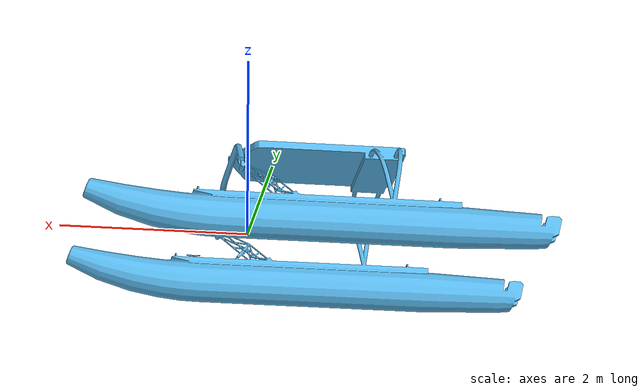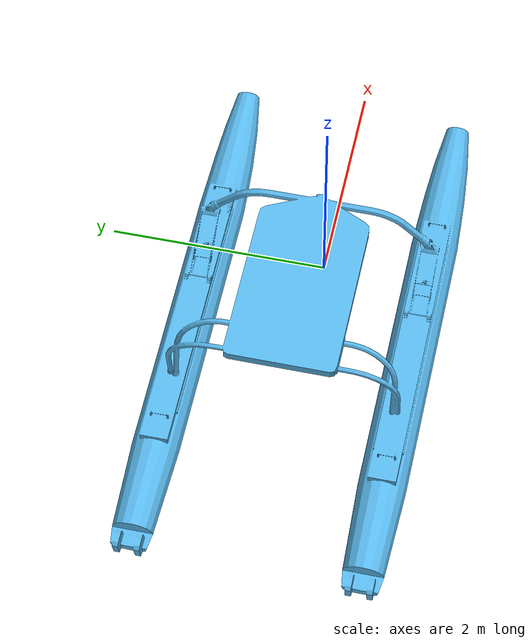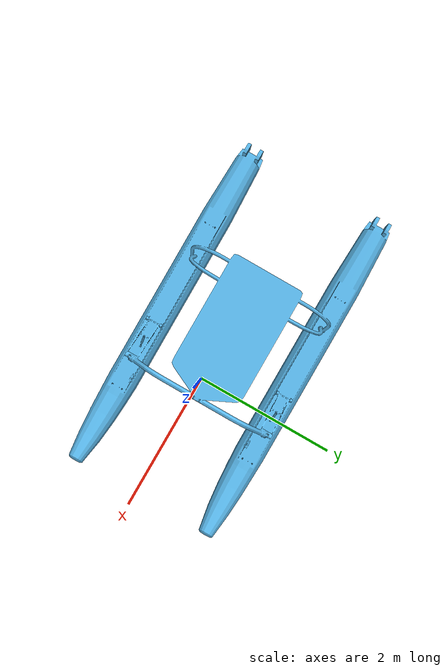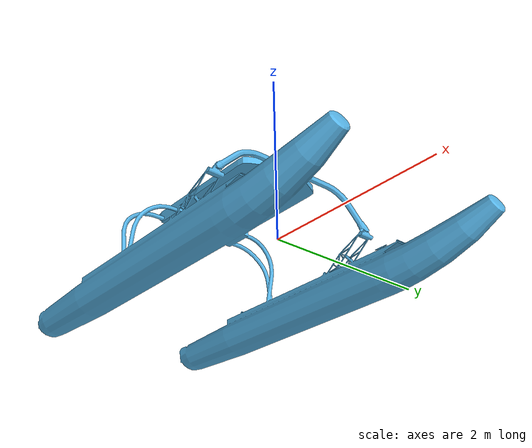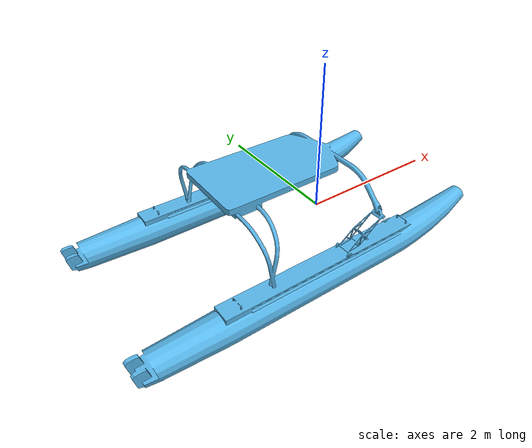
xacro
<?xml version="1.0"?>
<robot xmlns:xacro="http://ros.org/wiki/xacro" name="wam-v">
 <xacro:arg name="namespace" default="wamv"/>
  <xacro:property name="namespace" value="$(arg namespace)" scope="global" />
  <!-- Macro for creating the main collisions as simple shapes. -->
  <xacro:macro name="main_collisions" params="prefix reflect:=1">

  </xacro:macro>

  <link name="${namespace}/base_link">
  </link>

  <joint name="${namespace}/dummy_joint" type = "fixed">
    <parent link="${namespace}/base_link"/>
    <child link="${namespace}/dummy_link"/>
  </joint>

  <!-- Basic model of the 16' WAM-V USV -->
  <link name="${namespace}/dummy_link">
    <visual>
      <origin xyz="-0.7 0.085 -0.45" rpy="0 0 0" />
      <geometry>
        <mesh filename="package://wamv_description/models/WAM-V-Base/mesh/WAM-V-Base.dae"/>
      </geometry>
    </visual>

     <!-- General collison for all robot made by JL -->
    <collision name="top_base">
      <origin xyz="0.25 0  0.2" rpy="0 0 0" />
      <geometry>
        <box size="1.52 1.16 .8" />
      </geometry>
    </collision>

    <inertial>
      <!-- valore aproximados para Geneseas, chequear -->
      <mass value="16.32"/>
      <inertia ixx="2.74" ixy="0.0" ixz="0.0" iyy="4.16" iyz="0.0" izz="4.7"/>
    </inertial>
  </link>

</robot>
